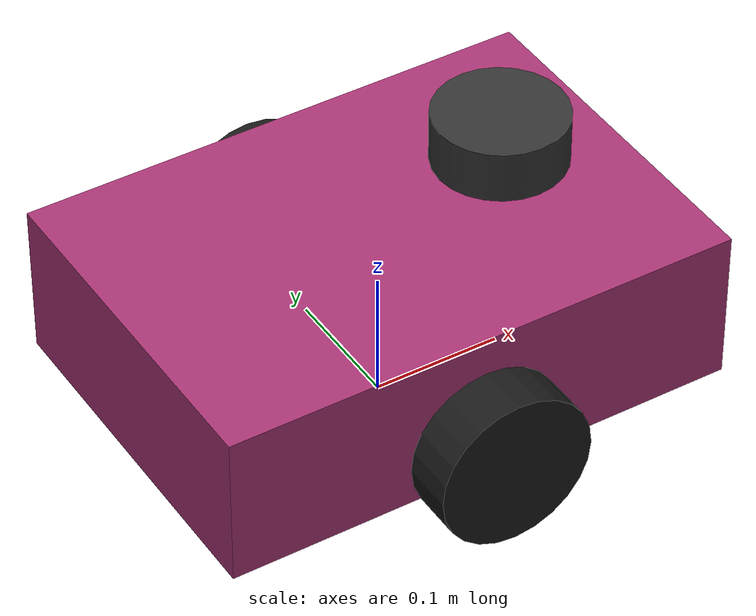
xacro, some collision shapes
<?xml version="1.0"?>
<robot name="custom_robot" xmlns:xacro="http://www.ros.org/wiki/xacro">

  <xacro:include filename="$(find my_robot_description)/urdf/robot_description.gazebo"/>
  <xacro:arg name="mesh_path" default="package://my_robot_description/meshes/"/>

  <!-- Dimensions -->
  <xacro:property name="base_length" value="0.40"/>
  <xacro:property name="base_width" value="0.28"/>
  <xacro:property name="base_height" value="0.12"/>
  <xacro:property name="base_mass" value="3.0"/>

  <xacro:property name="wheel_radius" value="0.06"/>
  <xacro:property name="wheel_width" value="0.04"/>
  <xacro:property name="wheel_mass" value="0.3"/>
  <xacro:property name="wheel_y_offset" value="0.16"/>

  <xacro:property name="caster_radius" value="0.03"/>
  <xacro:property name="caster_mass" value="0.05"/>
  <xacro:property name="caster_x_offset" value="0.15"/>

  <xacro:property name="ground_clearance" value="0.03"/>
  <!-- height of base_link centre above the ground -->
  <xacro:property name="base_z" value="${ground_clearance + base_height / 2}"/>

  <!-- Base footprint -->
  <link name="base_footprint"/>

  <joint name="base_footprint_joint" type="fixed">
    <parent link="base_footprint"/>
    <child link="base_link"/>
    <origin xyz="0 0 ${base_z}" rpy="0 0 0"/>
  </joint>

  <!-- Chassis -->
  <link name="base_link">
    <visual>
      <geometry>
        <box size="${base_length} ${base_width} ${base_height}"/>
      </geometry>
      <material name="chassis_color">
        <color rgba="0.65 0.20 0.45 1.0"/>
      </material>
    </visual>
    <collision>
      <geometry>
        <box size="${base_length} ${base_width} ${base_height}"/>
      </geometry>
    </collision>
    <inertial>
      <mass value="${base_mass}"/>
      <origin xyz="0 0 0" rpy="0 0 0"/>
      <inertia
        ixx="${(1/12) * base_mass * (base_width*base_width + base_height*base_height)}"
        ixy="0.0" ixz="0.0"
        iyy="${(1/12) * base_mass * (base_length*base_length + base_height*base_height)}"
        iyz="0.0"
        izz="${(1/12) * base_mass * (base_length*base_length + base_width*base_width)}"/>
    </inertial>
  </link>

  <!-- Drive wheels (left / right) -->
  <xacro:macro name="wheel" params="prefix y_reflect">

    <joint name="${prefix}_wheel_joint" type="continuous">
      <parent link="base_link"/>
      <child link="${prefix}_wheel_link"/>
      <origin xyz="0 ${y_reflect * wheel_y_offset} ${wheel_radius - base_z}" rpy="0 0 0"/>
      <axis xyz="0 1 0"/>
    </joint>

    <link name="${prefix}_wheel_link">
      <visual>
        <origin xyz="0 0 0" rpy="${pi/2} 0 0"/>
        <geometry>
          <cylinder radius="${wheel_radius}" length="${wheel_width}"/>
        </geometry>
        <material name="wheel_color">
          <color rgba="0.1 0.1 0.1 1.0"/>
        </material>
      </visual>
      <collision>
        <origin xyz="0 0 0" rpy="${pi/2} 0 0"/>
        <geometry>
          <cylinder radius="${wheel_radius}" length="${wheel_width}"/>
        </geometry>
      </collision>
      <inertial>
        <mass value="${wheel_mass}"/>
        <origin xyz="0 0 0" rpy="0 0 0"/>
        <inertia
          ixx="${(1/12) * wheel_mass * (3*wheel_radius*wheel_radius + wheel_width*wheel_width)}"
          ixy="0.0" ixz="0.0"
          iyy="${(1/2) * wheel_mass * (wheel_radius*wheel_radius)}"
          iyz="0.0"
          izz="${(1/12) * wheel_mass * (3*wheel_radius*wheel_radius + wheel_width*wheel_width)}"/>
      </inertial>
    </link>

  </xacro:macro>

  <xacro:wheel prefix="left"  y_reflect="1"/>
  <xacro:wheel prefix="right" y_reflect="-1"/>

  <!-- Caster balls (frictionless, front and rear) -->
  <xacro:macro name="caster" params="prefix x_reflect">

    <joint name="${prefix}_caster_joint" type="fixed">
      <parent link="base_link"/>
      <child link="${prefix}_caster_link"/>
      <origin xyz="${x_reflect * caster_x_offset} 0 ${caster_radius - base_z}" rpy="0 0 0"/>
    </joint>

    <link name="${prefix}_caster_link">
      <visual>
        <geometry>
          <sphere radius="${caster_radius}"/>
        </geometry>
        <material name="caster_color">
          <color rgba="0.3 0.3 0.3 1.0"/>
        </material>
      </visual>
      <collision>
        <geometry>
          <sphere radius="${caster_radius}"/>
        </geometry>
      </collision>
      <inertial>
        <mass value="${caster_mass}"/>
        <origin xyz="0 0 0" rpy="0 0 0"/>
        <inertia
          ixx="${0.4 * caster_mass * caster_radius * caster_radius}"
          ixy="0.0" ixz="0.0"
          iyy="${0.4 * caster_mass * caster_radius * caster_radius}"
          iyz="0.0"
          izz="${0.4 * caster_mass * caster_radius * caster_radius}"/>
      </inertial>
    </link>

  </xacro:macro>

  <xacro:caster prefix="front" x_reflect="1"/>
  <xacro:caster prefix="rear"  x_reflect="-1"/>

  <!-- LiDAR (frame name base_scan to match the Nav2 / SLAM / AMCL config) -->
  <link name="base_scan">
    <visual>
      <origin xyz="-0.02 -0.03 -0.02" rpy="1.5708 0 1.5708"/>
      <geometry>
        <mesh filename="$(arg mesh_path)lidar.STL" scale="0.001 0.001 0.001"/>
      </geometry>
      <material name="lidar_dark">
        <color rgba="0.2 0.2 0.2 1.0"/>
      </material>
    </visual>
    <collision>
      <origin xyz="0 0 0" rpy="0 0 0"/>
      <geometry>
        <cylinder radius="0.05" length="0.04"/>
      </geometry>
    </collision>
    <inertial>
      <mass value="0.2"/>
      <origin xyz="0 0 0" rpy="0 0 0"/>
      <inertia ixx="0.0001" ixy="0.0" ixz="0.0" iyy="0.0001" iyz="0.0" izz="0.0001"/>
    </inertial>
  </link>

  <!-- LiDAR toward the front, clear of the chassis top -->
  <joint name="lidar_joint" type="fixed">
    <parent link="base_link"/>
    <child link="base_scan"/>
    <origin xyz="0.10 0 ${base_height / 2 + 0.04}" rpy="0 0 0"/>
  </joint>

</robot>
